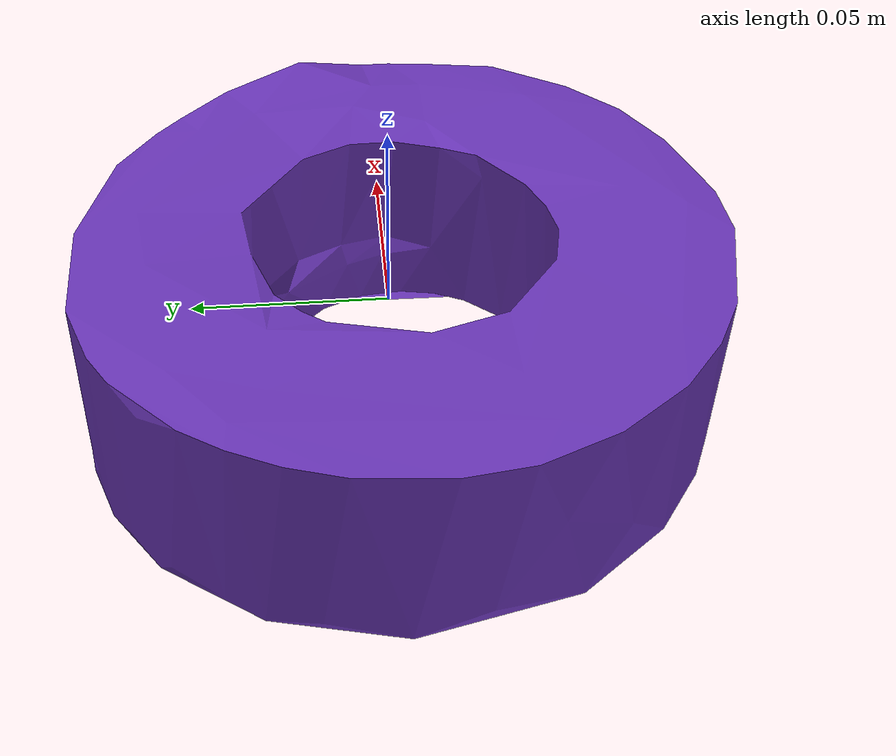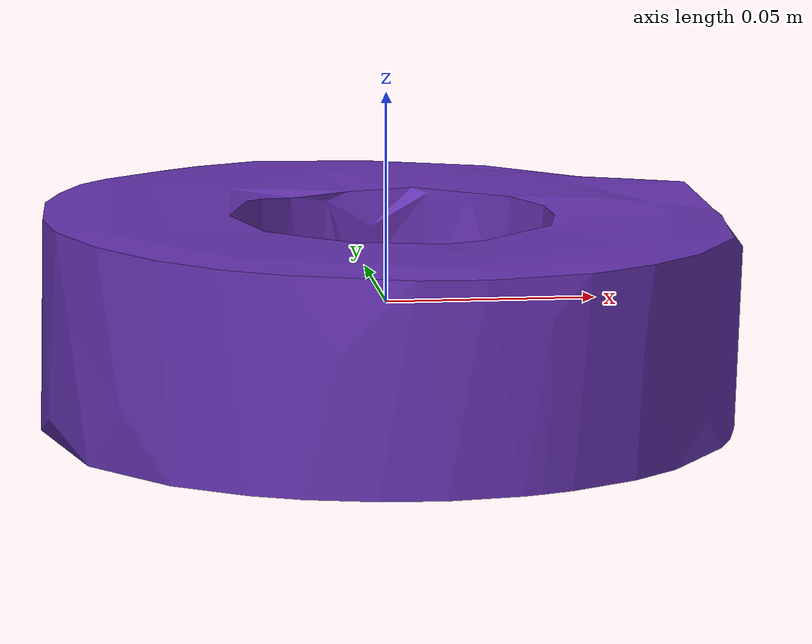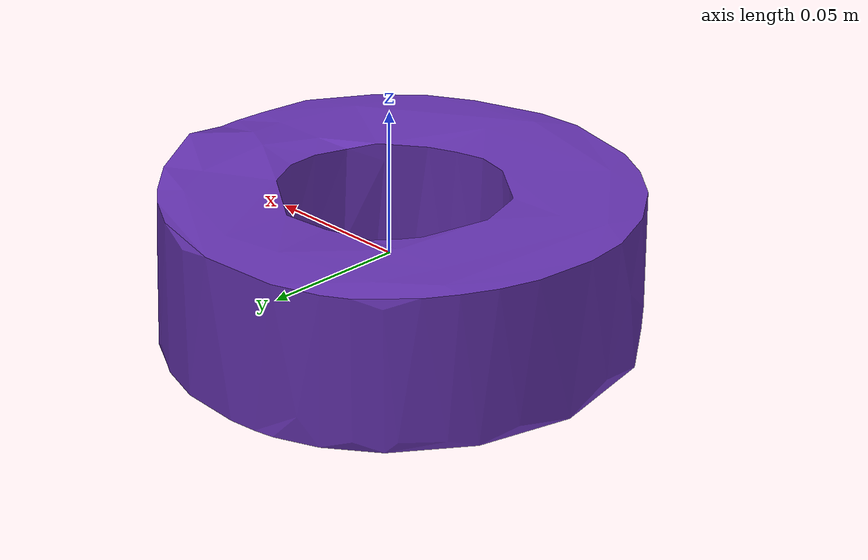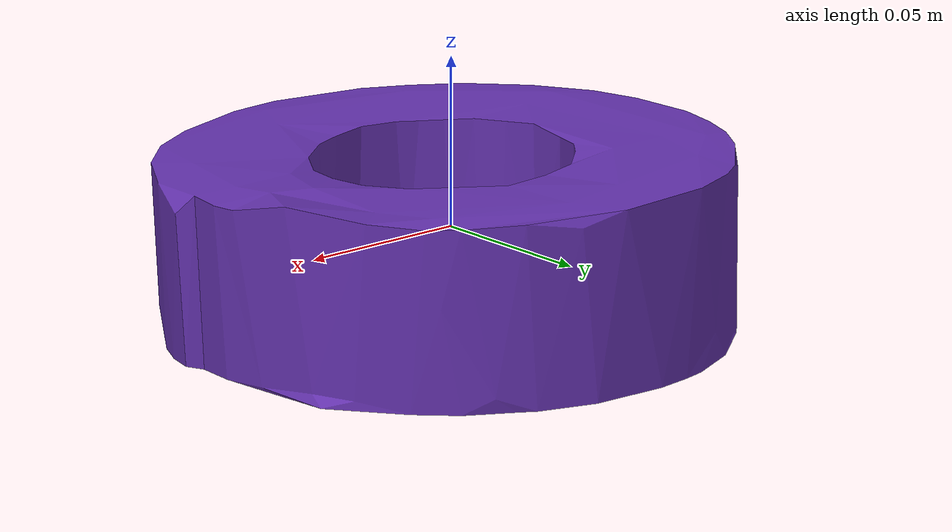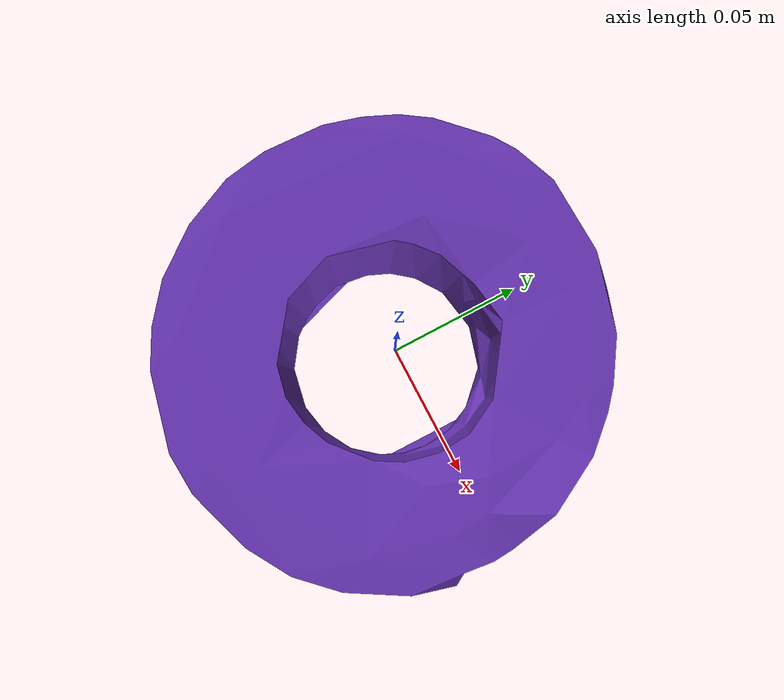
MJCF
<mujoco model="top_watertight_tiny">

  <asset>
    <mesh file="top_watertight_tiny.obj"/>
    <mesh file="top_watertight_tiny_collision_0.obj"/>
    <mesh file="top_watertight_tiny_collision_1.obj"/>
    <mesh file="top_watertight_tiny_collision_2.obj"/>
    <mesh file="top_watertight_tiny_collision_3.obj"/>
    <mesh file="top_watertight_tiny_collision_4.obj"/>
    <mesh file="top_watertight_tiny_collision_5.obj"/>
    <mesh file="top_watertight_tiny_collision_6.obj"/>
    <mesh file="top_watertight_tiny_collision_7.obj"/>
    <mesh file="top_watertight_tiny_collision_8.obj"/>
    <mesh file="top_watertight_tiny_collision_9.obj"/>
    <mesh file="top_watertight_tiny_collision_10.obj"/>
    <mesh file="top_watertight_tiny_collision_11.obj"/>
    <mesh file="top_watertight_tiny_collision_12.obj"/>
    <mesh file="top_watertight_tiny_collision_13.obj"/>
    <mesh file="top_watertight_tiny_collision_14.obj"/>
  </asset>
  <worldbody>
    <body name="top_watertight_tiny">
      <freejoint/>
      <geom solimp="0.90 0.95 0.001" solref="0.02 1.0" density="100" friction="0.95 0.4 0.3" rgba="0.4 0.2 0.7 1" mesh="top_watertight_tiny" group="2" type="mesh" contype="0" conaffinity="0"/>
      <geom solimp="0.90 0.95 0.001" solref="0.02 1.0" density="100" friction="0.95 0.4 0.3" mesh="top_watertight_tiny_collision_0" rgba="0.5577855408878621 0.4778963473533884 0.24171681904417952 1" group="3" type="mesh"/>
      <geom solimp="0.90 0.95 0.001" solref="0.02 1.0" density="100" friction="0.95 0.4 0.3" mesh="top_watertight_tiny_collision_1" rgba="0.8667333085902209 0.9028591754426832 0.756755733536676 1" group="3" type="mesh"/>
      <geom solimp="0.90 0.95 0.001" solref="0.02 1.0" density="100" friction="0.95 0.4 0.3" mesh="top_watertight_tiny_collision_2" rgba="0.4700363752322131 0.5921544346706205 0.6604834839725383 1" group="3" type="mesh"/>
      <geom solimp="0.90 0.95 0.001" solref="0.02 1.0" density="100" friction="0.95 0.4 0.3" mesh="top_watertight_tiny_collision_3" rgba="0.7525600892403183 0.15574696253130926 0.19847333135121037 1" group="3" type="mesh"/>
      <geom solimp="0.90 0.95 0.001" solref="0.02 1.0" density="100" friction="0.95 0.4 0.3" mesh="top_watertight_tiny_collision_4" rgba="0.9696718721580223 0.5683624506300425 0.8301547491736273 1" group="3" type="mesh"/>
      <geom solimp="0.90 0.95 0.001" solref="0.02 1.0" density="100" friction="0.95 0.4 0.3" mesh="top_watertight_tiny_collision_5" rgba="0.45946761292438343 0.6677685216205117 0.6821421646903996 1" group="3" type="mesh"/>
      <geom solimp="0.90 0.95 0.001" solref="0.02 1.0" density="100" friction="0.95 0.4 0.3" mesh="top_watertight_tiny_collision_6" rgba="0.5006732696405142 0.13397563549999147 0.5986212084700706 1" group="3" type="mesh"/>
      <geom solimp="0.90 0.95 0.001" solref="0.02 1.0" density="100" friction="0.95 0.4 0.3" mesh="top_watertight_tiny_collision_7" rgba="0.7093029279177712 0.8653849502989214 0.1506363988858329 1" group="3" type="mesh"/>
      <geom solimp="0.90 0.95 0.001" solref="0.02 1.0" density="100" friction="0.95 0.4 0.3" mesh="top_watertight_tiny_collision_8" rgba="0.276829072498741 0.6748595676501964 0.2084730092481889 1" group="3" type="mesh"/>
      <geom solimp="0.90 0.95 0.001" solref="0.02 1.0" density="100" friction="0.95 0.4 0.3" mesh="top_watertight_tiny_collision_9" rgba="0.0886199125793965 0.962908170429216 0.3269150092683024 1" group="3" type="mesh"/>
      <geom solimp="0.90 0.95 0.001" solref="0.02 1.0" density="100" friction="0.95 0.4 0.3" mesh="top_watertight_tiny_collision_10" rgba="0.9546382184009093 0.42600649927855005 0.821428471308039 1" group="3" type="mesh"/>
      <geom solimp="0.90 0.95 0.001" solref="0.02 1.0" density="100" friction="0.95 0.4 0.3" mesh="top_watertight_tiny_collision_11" rgba="0.2316806729919988 0.9989806907019765 0.08881929865999016 1" group="3" type="mesh"/>
      <geom solimp="0.90 0.95 0.001" solref="0.02 1.0" density="100" friction="0.95 0.4 0.3" mesh="top_watertight_tiny_collision_12" rgba="0.6020996084463172 0.09044315475784315 0.7576147165073581 1" group="3" type="mesh"/>
      <geom solimp="0.90 0.95 0.001" solref="0.02 1.0" density="100" friction="0.95 0.4 0.3" mesh="top_watertight_tiny_collision_13" rgba="0.37949164332075924 0.07988697962479652 0.8717799773635992 1" group="3" type="mesh"/>
      <geom solimp="0.90 0.95 0.001" solref="0.02 1.0" density="100" friction="0.95 0.4 0.3" mesh="top_watertight_tiny_collision_14" rgba="0.7219243489200304 0.9604512337610805 0.7494391551814218 1" group="3" type="mesh"/>
    </body>
  </worldbody>
</mujoco>
